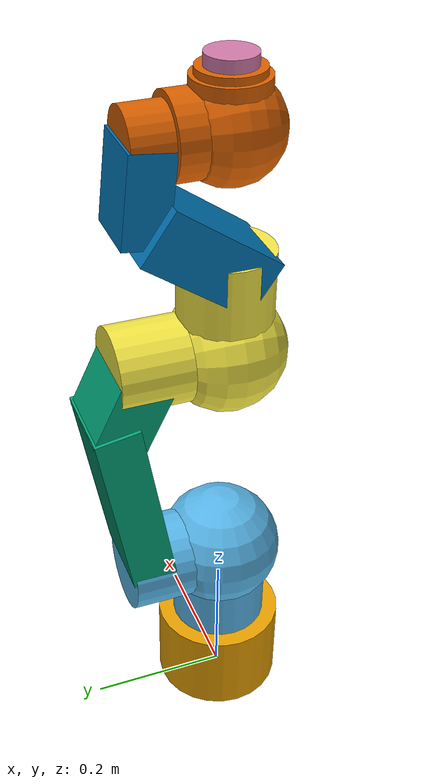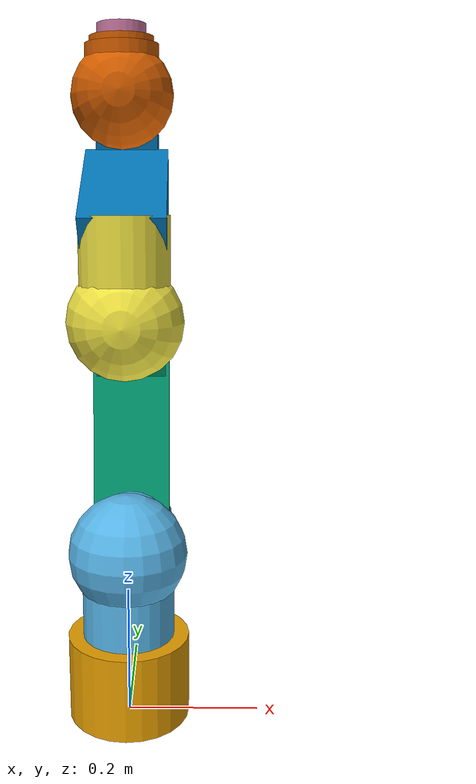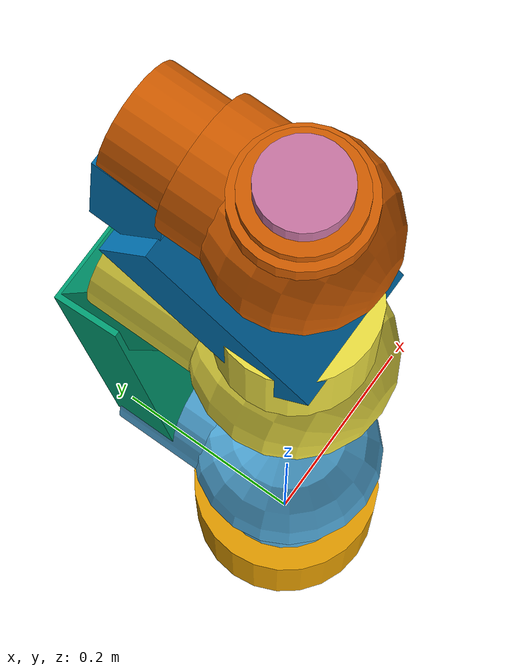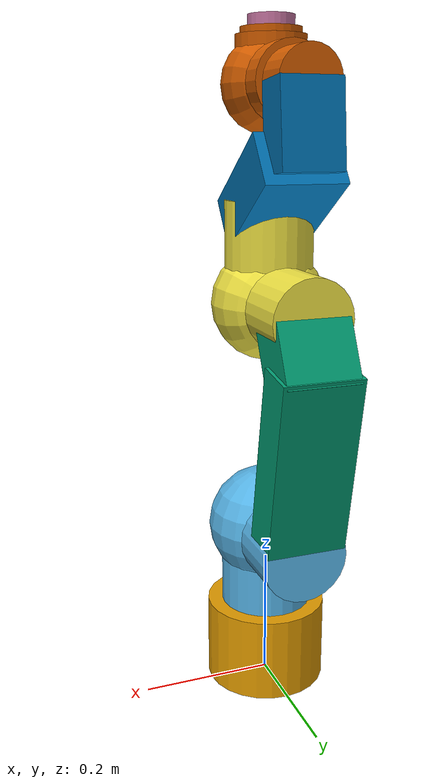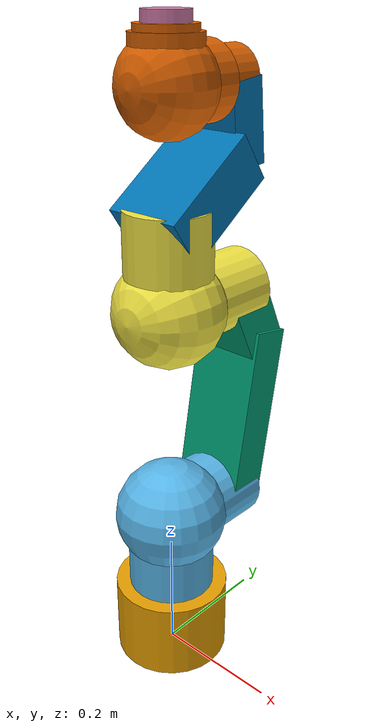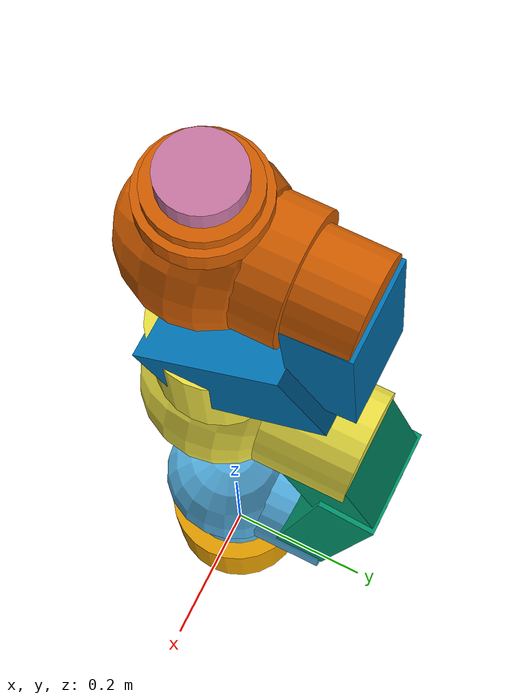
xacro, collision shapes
<?xml version="1.0"?>
<robot xmlns:xacro="http://www.ros.org/wiki/xacro" name="prbt">
    <xacro:arg name="initial_positions_file" default="initial_positions.yaml" />
    <xacro:arg name="robot_prefix" default="prbt_"/>
    <xacro:arg name="bus_config" default="$(find prbt_robot_support)/config/prbt/bus.yml"/>
    <xacro:arg name="master_config" default="$(find prbt_robot_support)/config/prbt/master.dcf"/>
    <xacro:arg name="can_interface" default="vcan0"/>
    <xacro:arg name="master_bin" default=""/>

    <!-- Import prbt urdf file -->
    <xacro:include filename="$(find prbt_description)/urdf/prbt_macro.xacro" />

    <!-- TCP Offset -->
    <xacro:arg name="tcp_offset_xyz" default="0 0 0"/>
    <xacro:arg name="tcp_offset_rpy" default="0 0 0"/>

    <!-- instantiate the robot -->
    <xacro:prbt prefix="$(arg robot_prefix)" />
    <link name="world"/>
    <joint name="world-base_link-fixed" type="fixed">
        <parent link="world"/>
        <child link="$(arg robot_prefix)base_link"/>
    </joint>

    <!-- TCP -->
    <joint name="$(arg robot_prefix)fixed_joint_tcp" type="fixed">
        <origin xyz="$(arg tcp_offset_xyz)" rpy="$(arg tcp_offset_rpy)" />
        <!-- tcp offset from last link -->
        <parent link="$(arg robot_prefix)flange"/>
        <child link="$(arg robot_prefix)tcp"/>
    </joint>
    <link name="$(arg robot_prefix)tcp" />

    <!-- Import control_xacro -->
    <xacro:include filename="prbt.ros2_control.xacro" />
    <xacro:prbt_ros2_control name="prbt" initial_positions_file="$(arg initial_positions_file)" prefix="$(arg robot_prefix)" bus_config="$(arg bus_config)" master_config="$(arg master_config)" can_interface="$(arg can_interface)" master_bin="$(arg master_bin)"/>

</robot>

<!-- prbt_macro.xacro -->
<robot xmlns:xacro="http://www.ros.org/wiki/xacro">
  <xacro:macro name="prbt" params="prefix">

    <!-- Height of Foot -->
    <xacro:property name="L0" value="0.2604" />

    <!-- Length of the first connector -->
    <xacro:property name="L1" value="0.3500" />

    <!-- Length of the second connector -->
    <xacro:property name="L2" value="0.3070" />

    <!-- Distance last joint to flange -->
    <xacro:property name="L3" value="0.0840" />

    <!-- robot foot link -->
    <link name="${prefix}base_link">
      <inertial>
        <mass value="2.4"/>
        <inertia ixx="0" ixy="0" ixz="0" iyy="0" iyz="0" izz="0" />
      </inertial>
      <visual>
        <origin xyz="0 0 0" rpy="0 0 0" />
        <geometry>
          <mesh filename="package://prbt_description/meshes/foot.dae" />
        </geometry>
      </visual>

      <collision>
        <origin rpy="${pi} 0 0" xyz="0 0 0.065"/>
        <geometry>
          <cylinder length="0.13" radius="0.09275"/>
        </geometry>
      </collision>
    </link>

    <!-- arm 1 joint -->
    <joint name="${prefix}joint_1" type="revolute">
      <origin xyz="0 0 ${L0}" rpy="0 0 -${pi}"/>
      <parent link="${prefix}base_link"/>
      <child link="${prefix}link_1"/>
      <axis xyz="0 0 1"/>
      <limit effort="370" velocity="1.57" lower="-2.96706" upper="2.96706"/>
      <dynamics damping="15.0" friction="11" />
    </joint>

    <!-- arm 1 link -->
    <link name="${prefix}link_1">
      <inertial>
        <mass value="7.1"/>
        <origin xyz="0 -0.026 -0.051" />
        <inertia ixx="3.53e-2" ixy="0" ixz="0" iyy="3.01e-2" iyz="9.04e-3" izz="1.87e-2" />
      </inertial>

      <visual>
        <origin xyz="0 0 0" rpy="0 0 0" />
        <geometry>
          <mesh filename="package://prbt_description/meshes/link_1.dae" />
        </geometry>
      </visual>

      <collision>
        <origin rpy="0 0 0" xyz="0 0 -0.08"/>
        <geometry>
          <cylinder length="0.10" radius="0.07"/>
        </geometry>
      </collision>
      <collision>
        <origin rpy="0 0 0" xyz="0 0 0"/>
        <geometry>
          <sphere radius="0.09"/>
        </geometry>
      </collision>
      <collision>
        <origin rpy="0 ${pi/2} ${pi/2}" xyz="0 -0.10 0"/>
        <geometry>
          <cylinder length="0.10" radius="0.065"/>
        </geometry>
      </collision>
    </link>

    <!-- joint between arm_1_link and arm_2_link -->
    <joint name="${prefix}joint_2" type="revolute">
      <origin xyz="0 0 0" rpy="${pi/2} 0 0"/>
      <parent link="${prefix}link_1"/>
      <child link="${prefix}link_2"/>
      <axis xyz="0 0 1"/>
      <limit effort="370" velocity="1.57" lower="-2.53073" upper="2.53073"/>
      <dynamics damping="12.0" friction="10.0" />
    </joint>

    <link name="${prefix}link_2">
      <inertial>
        <mass value="1.7"/>
        <origin xyz="0 0.162 0.134" />
        <inertia ixx="3.58e-2" ixy="0" ixz="0" iyy="3.22e-3" iyz="-1.45e-3" izz="3.66e-2" />
      </inertial>

      <visual name="first">
        <origin xyz="0 0 0" rpy="0 0 0" />
        <geometry>
          <mesh filename="package://prbt_description/meshes/link_2.dae" />
        </geometry>
      </visual>

      <collision>
        <origin rpy="${pi/18} 0 0" xyz="0 0.15 0.145"/>
        <geometry>
          <box size="0.121 0.27 0.065"/>
        </geometry>
      </collision>
      <collision>
        <origin rpy="-${pi/7} 0 0" xyz="0 0.3 0.145"/>
        <geometry>
          <box size="0.11 0.1 0.075"/>
        </geometry>
      </collision>

    </link>

    <!-- joint between arm_2_link and arm_3_link -->
    <joint name="${prefix}joint_3" type="revolute">
      <origin xyz="0 ${L1} 0" rpy="0 ${pi} 0"/>
      <parent link="${prefix}link_2"/>
      <child link="${prefix}link_3"/>
      <axis xyz="0 0 1"/>
      <limit effort="176" velocity="1.57" lower="-2.35620" upper="2.35620"/>
      <dynamics damping="4.5" friction="4.5" />
    </joint>

    <link name="${prefix}link_3">
      <inertial>
        <mass value="4.8"/>
        <origin xyz="0 0.043 -0.027" />
        <inertia ixx="2.06e-2" ixy="0" ixz="0" iyy="1.08e-2" iyz="-5.36e-3" izz="1.63e-2" />
      </inertial>

      <visual>
        <origin xyz="0 0 0" rpy="0 0 0" />
        <geometry>
          <mesh filename="package://prbt_description/meshes/link_3.dae" />
        </geometry>
      </visual>

      <collision>
        <origin rpy="0 0 0" xyz="0 0 -0.11"/>
        <geometry>
          <cylinder length="0.10" radius="0.06"/>
        </geometry>
      </collision>
      <collision>
        <origin rpy="0 0 0" xyz="0 0 0"/>
        <geometry>
          <sphere radius="0.085"/>
        </geometry>
      </collision>
      <collision>
        <origin rpy="0 ${pi/2} ${pi/2}" xyz="0 0.10 0"/>
        <geometry>
          <cylinder length="0.10" radius="0.065"/>
        </geometry>
      </collision>
    </link>

    <!-- joint between arm_3_link and arm_4_link -->
    <joint name="${prefix}joint_4" type="revolute">
      <origin xyz="0 0 0" rpy="-${pi/2} ${pi} 0" />
      <parent link="${prefix}link_3"/>
      <child link="${prefix}link_4"/>
      <axis xyz="0 0 1" />
      <limit effort="176" velocity="1.57" lower="-2.96706" upper="2.96706"/>
      <dynamics damping="4.2" friction="3.8" />
    </joint>

    <link name="${prefix}link_4">
      <inertial>
        <mass value="0.9"/>
        <origin xyz="0 -0.061 0.204" />
        <inertia ixx="6.79e-3" ixy="0" ixz="0" iyy="4.91e-3" iyz="2.67e-3" izz="3.40e-3" />
      </inertial>

      <visual>
        <origin xyz="0 0 0" rpy="0 0 0" />
        <geometry>
          <mesh filename="package://prbt_description/meshes/link_4.dae" />
        </geometry>
      </visual>

      <collision>
        <origin rpy="${pi/3.25} 0 0" xyz="0 -0.04 0.162"/>
        <geometry>
          <box size="0.121 0.08 0.17"/>
        </geometry>
      </collision>
      <collision>
        <origin rpy="-${pi/30} 0 0" xyz="0 -0.115 0.25"/>
        <geometry>
          <box size="0.09 0.06 0.12"/>
        </geometry>
      </collision>

    </link>

    <!-- joint between arm_4_link and arm_5_link -->
    <joint name="${prefix}joint_5" type="revolute">
      <origin xyz="0 0 ${L2}" rpy="${pi/2} 0 ${pi}" />
      <parent link="${prefix}link_4"/>
      <child link="${prefix}link_5"/>
      <axis xyz="0 0 1" />
      <limit effort="41.6" velocity="1.57" lower="-2.96706" upper="2.96706" />
      <dynamics damping="1.5" friction="3.5" />
    </joint>

    <link name="${prefix}link_5">
      <inertial>
        <mass value="2.6"/>
        <origin xyz="-0.001 0.021 -0.032" />
        <inertia ixx="7.37e-3" ixy="4.78e-6" ixz="6.00e-5" iyy="5.87e-3" iyz="-1.71e-3" izz="3.96e-3" />
      </inertial>

      <visual>
        <origin xyz="0 0 0" rpy="0 0 0" />
        <geometry>
          <mesh filename="package://prbt_description/meshes/link_5.dae"/>
        </geometry>
      </visual>

      <collision>
        <origin rpy="0 0 0" xyz="0 0 -0.095"/>
        <geometry>
          <cylinder length="0.08" radius="0.045"/>
        </geometry>
      </collision>
      <collision>
        <origin rpy="0 0 0" xyz="0 0 -0.06"/>
        <geometry>
          <cylinder length="0.04" radius="0.0545"/>
        </geometry>
      </collision>
      <collision>
        <origin rpy="0 0 0" xyz="0 0 0"/>
        <geometry>
          <sphere radius="0.07"/>
        </geometry>
      </collision>
      <collision>
        <origin rpy="0 ${pi/2} ${pi/2}" xyz="0 0.05 0"/>
        <geometry>
          <cylinder length="0.03" radius="0.05"/>
        </geometry>
      </collision>
      <collision>
        <origin rpy="0 ${pi/2} ${pi/2}" xyz="0 0.05 0"/>
        <geometry>
          <cylinder length="0.049" radius="0.0435"/>
        </geometry>
      </collision>
    </link>

    <!-- joint between arm_5_link and flange -->
    <joint name="${prefix}joint_6" type="revolute">
      <origin xyz="0 ${L3} 0" rpy="-${pi/2} 0 0" />
      <parent link="${prefix}link_5"/>
      <child link="${prefix}flange"/>
      <axis xyz="0 0 1" />
      <limit effort="20.1" velocity="1.57" lower="-3.12414" upper="3.12414" />
      <dynamics damping="4.5" friction="7.0" />
    </joint>

    <!-- Flange -->
    <link name="${prefix}flange">
      <inertial>
        <mass value="0.02" />
        <origin xyz="0 0 0" />
        <inertia ixx="0" ixy="0" ixz="0" iyy="0" iyz="0" izz="0" />
      </inertial>

      <visual>
        <origin xyz="0 0 0" rpy="0 0 0" />
        <geometry>
          <mesh filename="package://prbt_description/meshes/flange.dae"/>
        </geometry>
      </visual>

      <collision>
        <origin rpy="0 0 0" xyz="0 0 -0.0035"/>
        <geometry>
          <cylinder length="0.02" radius="0.0331"/>
        </geometry>
      </collision>
    </link>

    <!-- ROS-Industrial 'base' frame: base_link to robot world coordinate sytem transform -->
    <link name="${prefix}base" />
    <joint name="${prefix}base_link-base" type="fixed">
      <origin xyz="0 0 0" rpy="0 0 0"/>
      <parent link="${prefix}base_link"/>
      <child link="${prefix}base"/>
    </joint>

    <!-- ROS-Industrial 'tool0' frame: all-zeros tool frame -->
    <link name="${prefix}tool0" />
    <joint name="${prefix}flange-tool0" type="fixed">
      <origin xyz="0 0 0" rpy="0 0 0" />
      <parent link="${prefix}flange" />
      <child link="${prefix}tool0" />
    </joint>

    <!-- transmissions for gazebo -->
    <transmission name="${prefix}joint_1_trans">
      <type>transmission_interface/SimpleTransmission</type>
      <joint name="${prefix}joint_1">
        <hardwareInterface>hardware_interface/PositionJointInterface</hardwareInterface>
      </joint>
      <actuator name="${prefix}joint_1_motor"/>
    </transmission>
    <transmission name="${prefix}joint_2_trans">
      <type>transmission_interface/SimpleTransmission</type>
      <joint name="${prefix}joint_2">
        <hardwareInterface>hardware_interface/PositionJointInterface</hardwareInterface>
      </joint>
      <actuator name="${prefix}joint_2_motor"/>
    </transmission>
    <transmission name="${prefix}joint_3_trans">
      <type>transmission_interface/SimpleTransmission</type>
      <joint name="${prefix}joint_3">
        <hardwareInterface>hardware_interface/PositionJointInterface</hardwareInterface>
      </joint>
      <actuator name="${prefix}joint_3_motor"/>
    </transmission>
    <transmission name="${prefix}joint_4_trans">
      <type>transmission_interface/SimpleTransmission</type>
      <joint name="${prefix}joint_4">
        <hardwareInterface>hardware_interface/PositionJointInterface</hardwareInterface>
      </joint>
      <actuator name="${prefix}joint_4_motor"/>
    </transmission>
    <transmission name="${prefix}joint_5_trans">
      <type>transmission_interface/SimpleTransmission</type>
      <joint name="${prefix}joint_5">
        <hardwareInterface>hardware_interface/PositionJointInterface</hardwareInterface>
      </joint>
      <actuator name="${prefix}joint_5_motor"/>
    </transmission>
    <transmission name="${prefix}joint_6_trans">
      <type>transmission_interface/SimpleTransmission</type>
      <joint name="${prefix}joint_6">
        <hardwareInterface>hardware_interface/PositionJointInterface</hardwareInterface>
      </joint>
      <actuator name="${prefix}joint_6_motor"/>
    </transmission>

    <gazebo>
      <plugin name="gazebo_ros_control" filename="libgazebo_ros_control.so">
        <robotNamespace>prbt</robotNamespace>
        <robotSimType>gazebo_ros_control/DefaultRobotHWSim</robotSimType>
        <legacyModeNS>false</legacyModeNS>        <!-- Only used from ros-kinetic-gazebo-ros-control 2.5.18 -->
      </plugin>
    </gazebo>

    <gazebo reference="${prefix}joint_1">
      <provideFeedback>true</provideFeedback>
    </gazebo>

    <gazebo>
      <plugin name="ft_sensor" filename="libgazebo_ros_ft_sensor.so">
        <updateRate>100.0</updateRate>
        <topicName>prbt/ft_sensor/joint_1</topicName>
        <jointName>${prefix}joint_1</jointName>
      </plugin>
    </gazebo>

    <gazebo reference="${prefix}joint_2">
      <provideFeedback>true</provideFeedback>
    </gazebo>

    <gazebo>
      <plugin name="ft_sensor" filename="libgazebo_ros_ft_sensor.so">
        <updateRate>100.0</updateRate>
        <topicName>prbt/ft_sensor/joint_2</topicName>
        <jointName>${prefix}joint_2</jointName>
      </plugin>
    </gazebo>

    <gazebo reference="${prefix}joint_3">
      <provideFeedback>true</provideFeedback>
    </gazebo>

    <gazebo>
      <plugin name="ft_sensor" filename="libgazebo_ros_ft_sensor.so">
        <updateRate>100.0</updateRate>
        <topicName>prbt/ft_sensor/joint_3</topicName>
        <jointName>${prefix}joint_3</jointName>
      </plugin>
    </gazebo>

    <gazebo reference="${prefix}joint_4">
      <provideFeedback>true</provideFeedback>
    </gazebo>

    <gazebo>
      <plugin name="ft_sensor" filename="libgazebo_ros_ft_sensor.so">
        <updateRate>100.0</updateRate>
        <topicName>prbt/ft_sensor/joint_4</topicName>
        <jointName>${prefix}joint_4</jointName>
      </plugin>
    </gazebo>

    <gazebo reference="${prefix}joint_5">
      <provideFeedback>true</provideFeedback>
    </gazebo>

    <gazebo>
      <plugin name="ft_sensor" filename="libgazebo_ros_ft_sensor.so">
        <updateRate>100.0</updateRate>
        <topicName>prbt/ft_sensor/joint_5</topicName>
        <jointName>${prefix}joint_5</jointName>
      </plugin>
    </gazebo>

    <gazebo reference="${prefix}joint_6">
      <provideFeedback>true</provideFeedback>
    </gazebo>

    <gazebo>
      <plugin name="ft_sensor" filename="libgazebo_ros_ft_sensor.so">
        <updateRate>100.0</updateRate>
        <topicName>prbt/ft_sensor/joint_6</topicName>
        <jointName>${prefix}joint_6</jointName>
      </plugin>
    </gazebo>

  </xacro:macro>

</robot>
